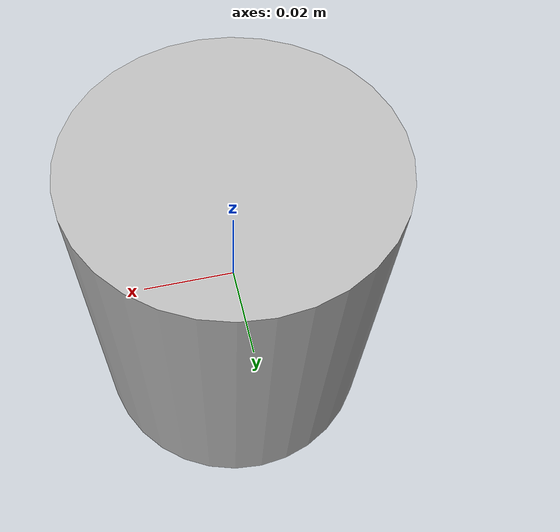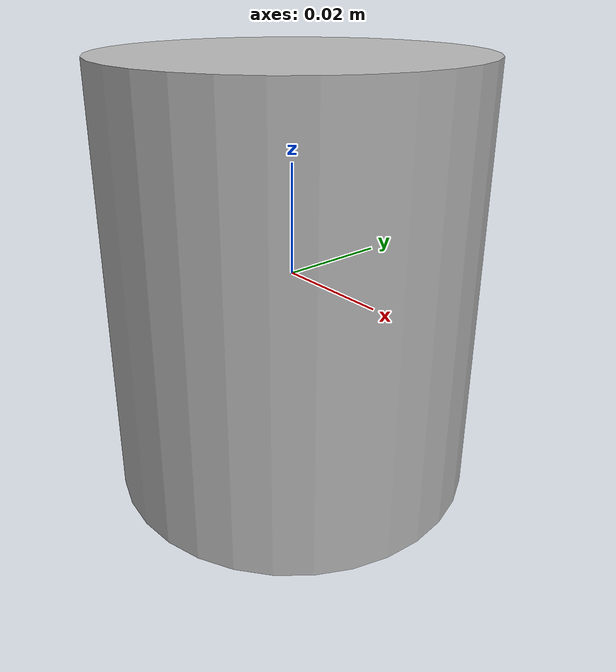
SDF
<?xml version ="1.0"?>
<sdf version="1.6">
  <model name="lab">

    <link name="link">
      <collision name="colision1">
        <pose>0 0 0 0 0 0 </pose>
        <geometry>

          <mesh>
            <uri>model://robot_wheels/meshes/robot_wheels.dae</uri>

          </mesh>
        </geometry>

      </collision>

      <visual name="visual1">
        <cast_shadows>false</cast_shadows>
	<pose> 0 0 0 0 0 0</pose>
        <geometry>
          <mesh>
            <uri>model://robot_wheels/meshes/robot_wheels.dae</uri>

          </mesh>
        </geometry>
      </visual>

    </link>
  </model>
</sdf>
